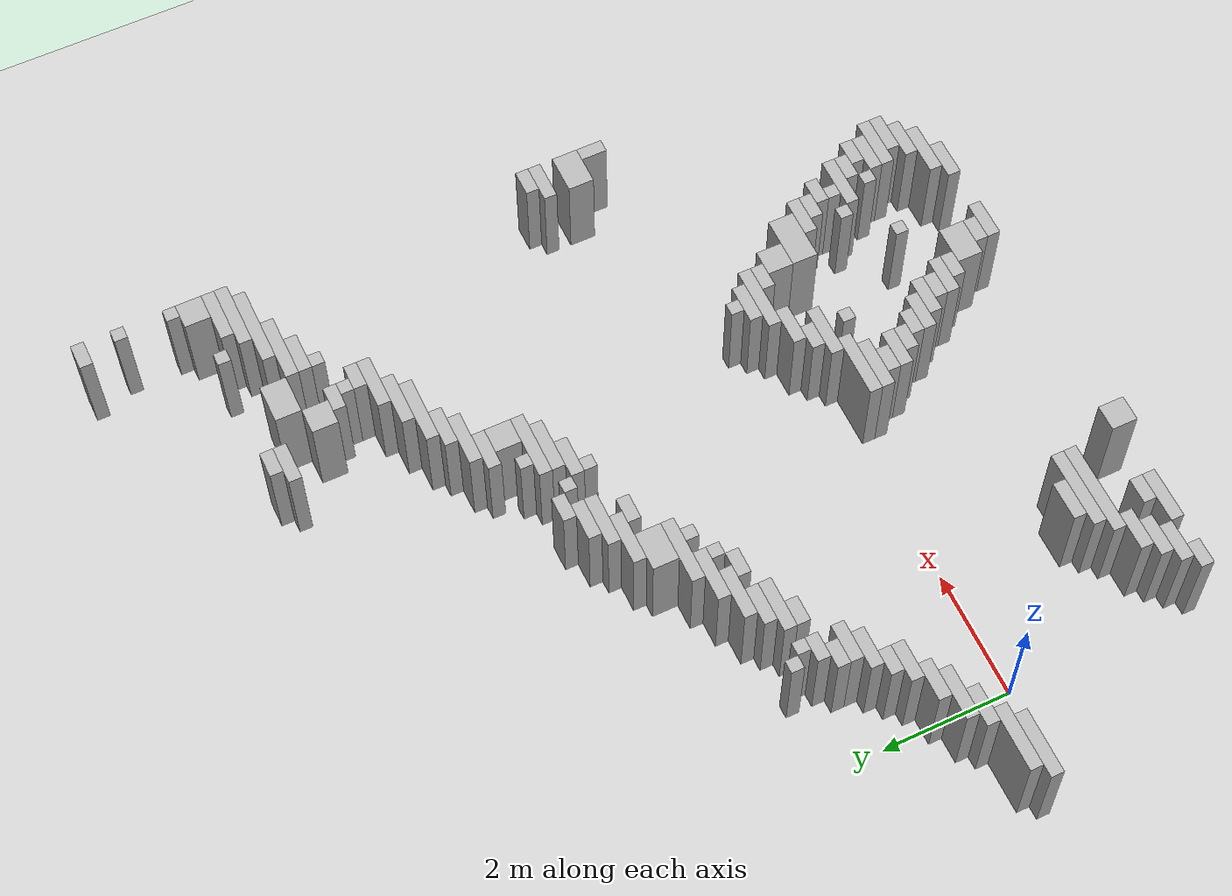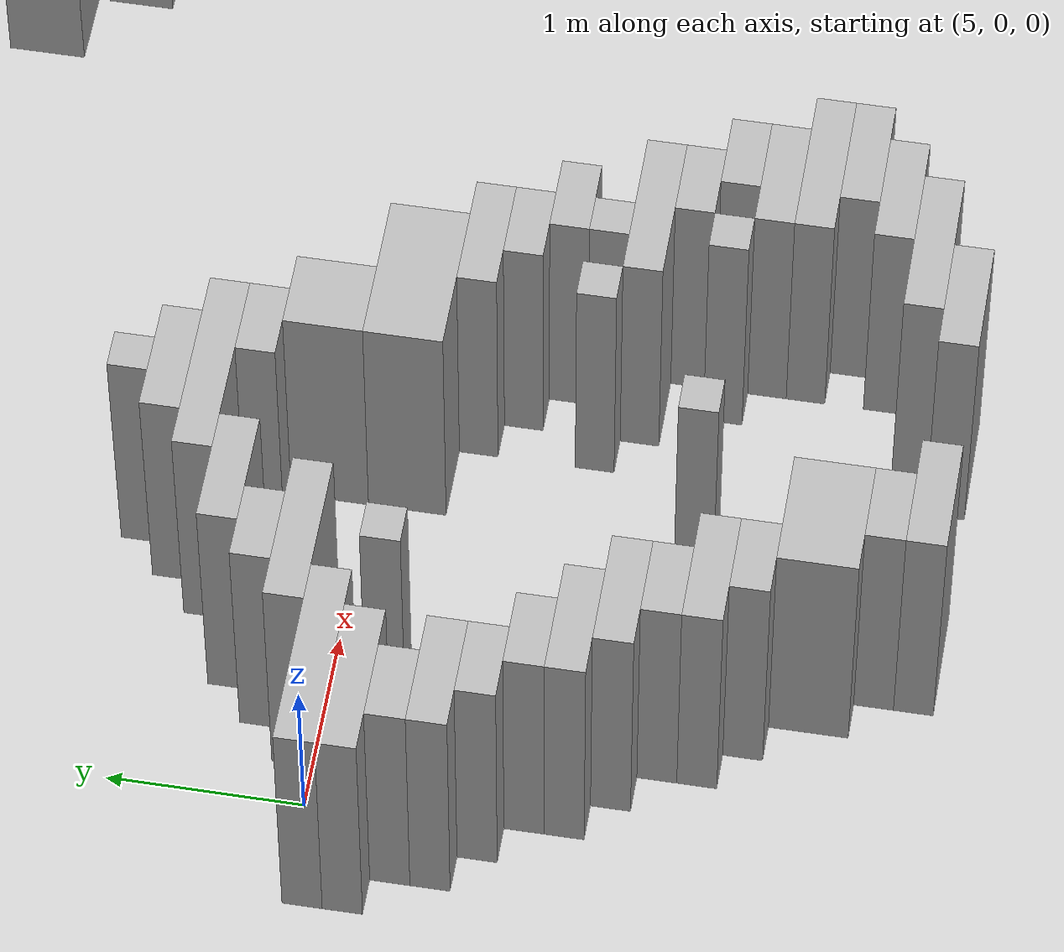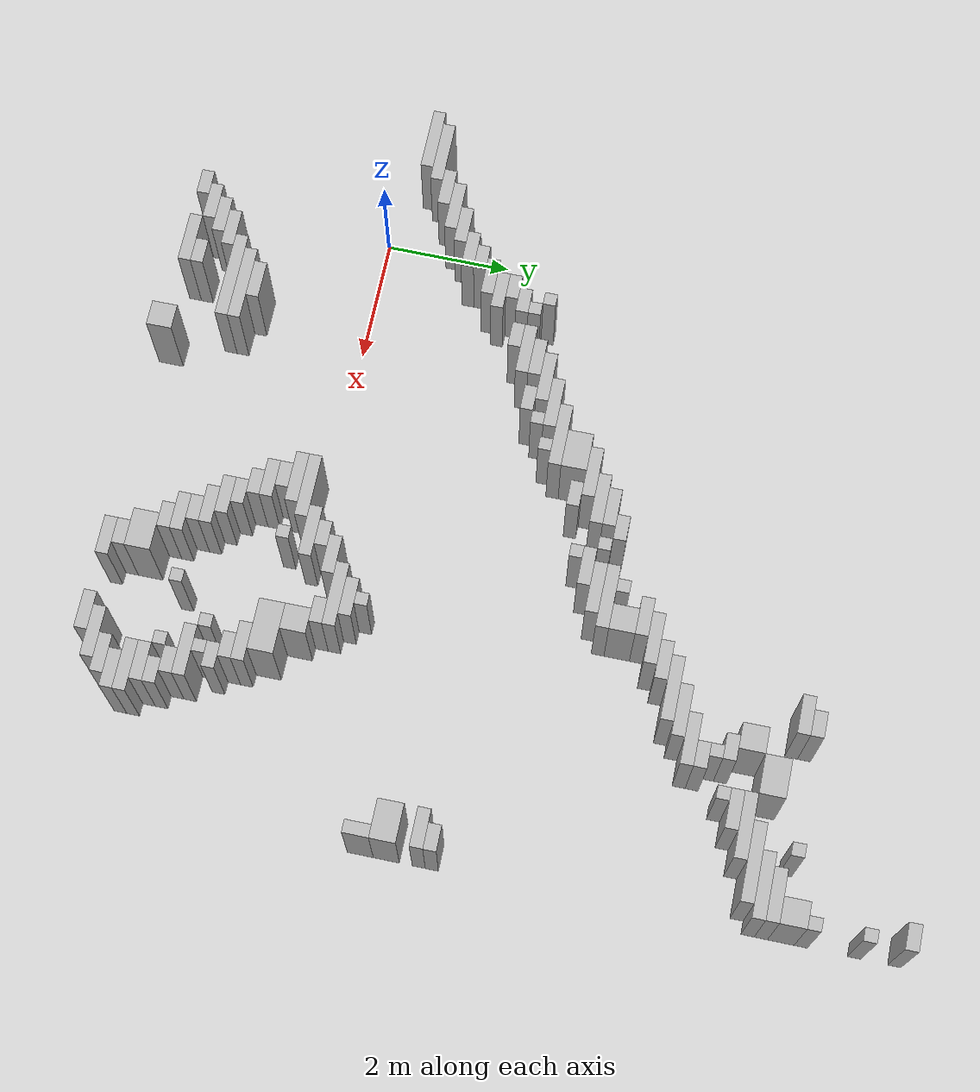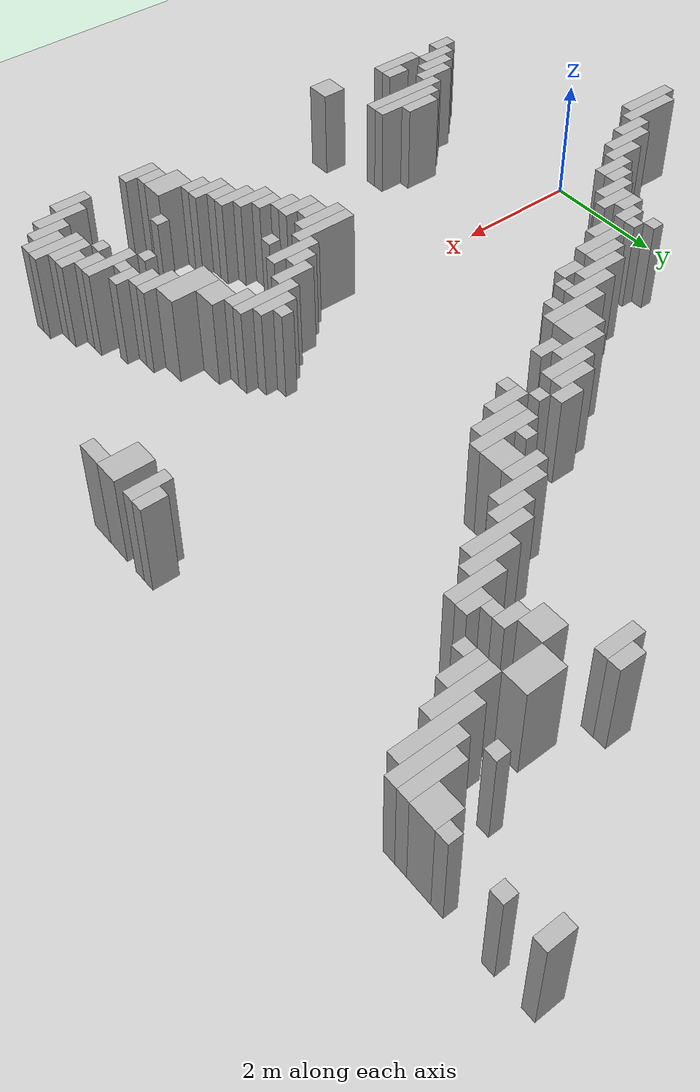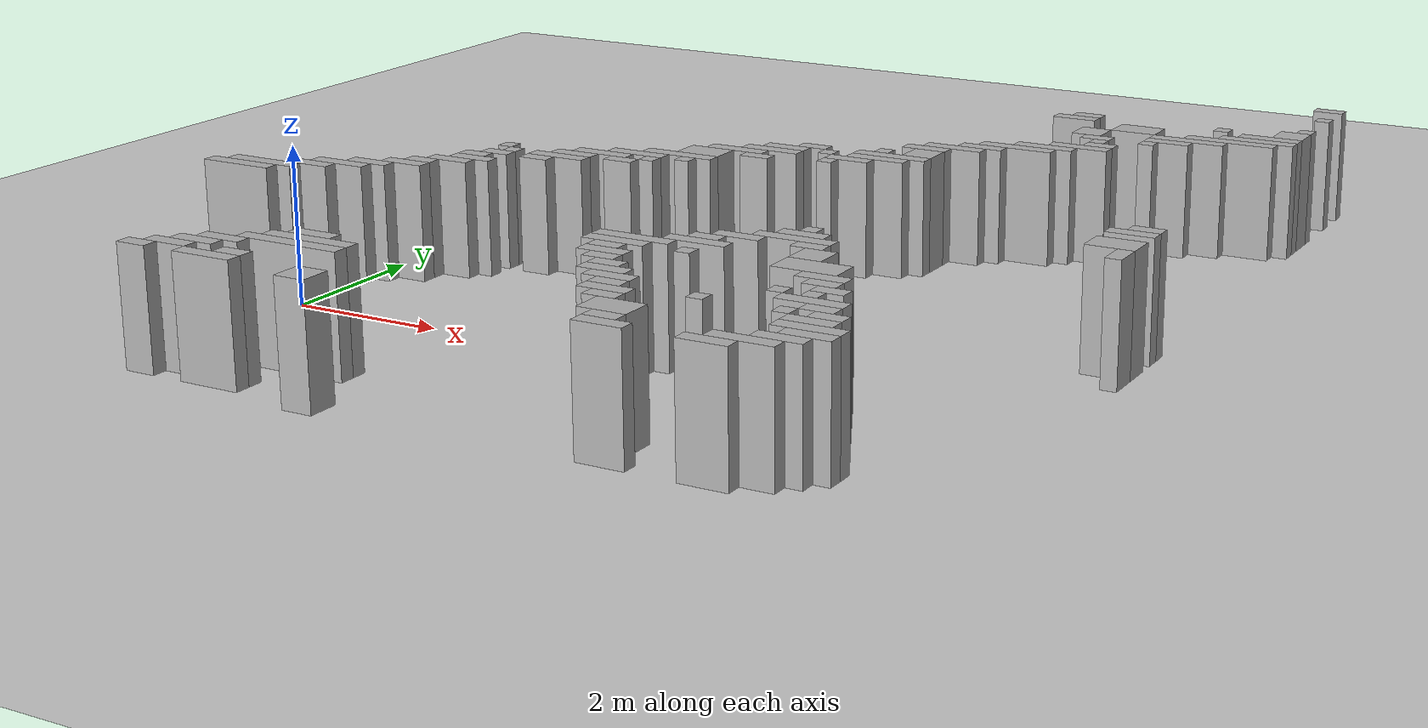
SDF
<sdf version="1.6">
 <world name="real_map">
  <include><uri>model://sun</uri></include>
  <include><uri>model://ground_plane</uri></include>
  <model name="w0">
   <static>true</static>
   <pose>9.90 9.30 0.8 0 0 0</pose>
   <link name="l">
    <collision name="c"><geometry><box><size>0.20 0.20 1.5</size></box></geometry></collision>
    <visual name="v">
     <geometry><box><size>0.20 0.20 1.5</size></box></geometry>
     <material><ambient>0.7 0.7 0.7 1</ambient></material>
    </visual>
   </link>
  </model>
  <model name="w1">
   <static>true</static>
   <pose>9.80 9.90 0.8 0 0 0</pose>
   <link name="l">
    <collision name="c"><geometry><box><size>0.40 0.20 1.5</size></box></geometry></collision>
    <visual name="v">
     <geometry><box><size>0.40 0.20 1.5</size></box></geometry>
     <material><ambient>0.7 0.7 0.7 1</ambient></material>
    </visual>
   </link>
  </model>
  <model name="w4">
   <static>true</static>
   <pose>9.80 8.20 0.8 0 0 0</pose>
   <link name="l">
    <collision name="c"><geometry><box><size>0.40 0.40 1.5</size></box></geometry></collision>
    <visual name="v">
     <geometry><box><size>0.40 0.40 1.5</size></box></geometry>
     <material><ambient>0.7 0.7 0.7 1</ambient></material>
    </visual>
   </link>
  </model>
  <model name="w6">
   <static>true</static>
   <pose>9.70 2.70 0.8 0 0 0</pose>
   <link name="l">
    <collision name="c"><geometry><box><size>0.60 0.20 1.5</size></box></geometry></collision>
    <visual name="v">
     <geometry><box><size>0.60 0.20 1.5</size></box></geometry>
     <material><ambient>0.7 0.7 0.7 1</ambient></material>
    </visual>
   </link>
  </model>
  <model name="w8">
   <static>true</static>
   <pose>9.90 8.50 0.8 0 0 0</pose>
   <link name="l">
    <collision name="c"><geometry><box><size>0.20 0.20 1.5</size></box></geometry></collision>
    <visual name="v">
     <geometry><box><size>0.20 0.20 1.5</size></box></geometry>
     <material><ambient>0.7 0.7 0.7 1</ambient></material>
    </visual>
   </link>
  </model>
  <model name="w9">
   <static>true</static>
   <pose>6.50 5.70 0.8 0 0 0</pose>
   <link name="l">
    <collision name="c"><geometry><box><size>0.60 0.20 1.5</size></box></geometry></collision>
    <visual name="v">
     <geometry><box><size>0.60 0.20 1.5</size></box></geometry>
     <material><ambient>0.7 0.7 0.7 1</ambient></material>
    </visual>
   </link>
  </model>
  <model name="w10">
   <static>true</static>
   <pose>5.90 5.30 0.8 0 0 0</pose>
   <link name="l">
    <collision name="c"><geometry><box><size>0.60 0.20 1.5</size></box></geometry></collision>
    <visual name="v">
     <geometry><box><size>0.60 0.20 1.5</size></box></geometry>
     <material><ambient>0.7 0.7 0.7 1</ambient></material>
    </visual>
   </link>
  </model>
  <model name="w11">
   <static>true</static>
   <pose>7.00 8.10 0.8 0 0 0</pose>
   <link name="l">
    <collision name="c"><geometry><box><size>0.40 0.20 1.5</size></box></geometry></collision>
    <visual name="v">
     <geometry><box><size>0.40 0.20 1.5</size></box></geometry>
     <material><ambient>0.7 0.7 0.7 1</ambient></material>
    </visual>
   </link>
  </model>
  <model name="w12">
   <static>true</static>
   <pose>5.60 4.50 0.8 0 0 0</pose>
   <link name="l">
    <collision name="c"><geometry><box><size>0.80 0.20 1.5</size></box></geometry></collision>
    <visual name="v">
     <geometry><box><size>0.80 0.20 1.5</size></box></geometry>
     <material><ambient>0.7 0.7 0.7 1</ambient></material>
    </visual>
   </link>
  </model>
  <model name="w13">
   <static>true</static>
   <pose>7.20 6.10 0.8 0 0 0</pose>
   <link name="l">
    <collision name="c"><geometry><box><size>0.80 0.20 1.5</size></box></geometry></collision>
    <visual name="v">
     <geometry><box><size>0.80 0.20 1.5</size></box></geometry>
     <material><ambient>0.7 0.7 0.7 1</ambient></material>
    </visual>
   </link>
  </model>
  <model name="w15">
   <static>true</static>
   <pose>7.60 6.90 0.8 0 0 0</pose>
   <link name="l">
    <collision name="c"><geometry><box><size>0.40 0.20 1.5</size></box></geometry></collision>
    <visual name="v">
     <geometry><box><size>0.40 0.20 1.5</size></box></geometry>
     <material><ambient>0.7 0.7 0.7 1</ambient></material>
    </visual>
   </link>
  </model>
  <model name="w18">
   <static>true</static>
   <pose>7.80 6.50 0.8 0 0 0</pose>
   <link name="l">
    <collision name="c"><geometry><box><size>0.40 0.20 1.5</size></box></geometry></collision>
    <visual name="v">
     <geometry><box><size>0.40 0.20 1.5</size></box></geometry>
     <material><ambient>0.7 0.7 0.7 1</ambient></material>
    </visual>
   </link>
  </model>
  <model name="w19">
   <static>true</static>
   <pose>7.70 6.70 0.8 0 0 0</pose>
   <link name="l">
    <collision name="c"><geometry><box><size>0.20 0.20 1.5</size></box></geometry></collision>
    <visual name="v">
     <geometry><box><size>0.20 0.20 1.5</size></box></geometry>
     <material><ambient>0.7 0.7 0.7 1</ambient></material>
    </visual>
   </link>
  </model>
  <model name="w21">
   <static>true</static>
   <pose>5.30 4.30 0.8 0 0 0</pose>
   <link name="l">
    <collision name="c"><geometry><box><size>0.60 0.20 1.5</size></box></geometry></collision>
    <visual name="v">
     <geometry><box><size>0.60 0.20 1.5</size></box></geometry>
     <material><ambient>0.7 0.7 0.7 1</ambient></material>
    </visual>
   </link>
  </model>
  <model name="w22">
   <static>true</static>
   <pose>5.60 0.30 0.8 0 0 0</pose>
   <link name="l">
    <collision name="c"><geometry><box><size>0.40 0.20 1.5</size></box></geometry></collision>
    <visual name="v">
     <geometry><box><size>0.40 0.20 1.5</size></box></geometry>
     <material><ambient>0.7 0.7 0.7 1</ambient></material>
    </visual>
   </link>
  </model>
  <model name="w23">
   <static>true</static>
   <pose>7.70 -1.10 0.8 0 0 0</pose>
   <link name="l">
    <collision name="c"><geometry><box><size>0.20 0.20 1.5</size></box></geometry></collision>
    <visual name="v">
     <geometry><box><size>0.20 0.20 1.5</size></box></geometry>
     <material><ambient>0.7 0.7 0.7 1</ambient></material>
    </visual>
   </link>
  </model>
  <model name="w24">
   <static>true</static>
   <pose>0.90 1.90 0.8 0 0 0</pose>
   <link name="l">
    <collision name="c"><geometry><box><size>0.60 0.20 1.5</size></box></geometry></collision>
    <visual name="v">
     <geometry><box><size>0.60 0.20 1.5</size></box></geometry>
     <material><ambient>0.7 0.7 0.7 1</ambient></material>
    </visual>
   </link>
  </model>
  <model name="w25">
   <static>true</static>
   <pose>8.10 -1.90 0.8 0 0 0</pose>
   <link name="l">
    <collision name="c"><geometry><box><size>0.60 0.20 1.5</size></box></geometry></collision>
    <visual name="v">
     <geometry><box><size>0.60 0.20 1.5</size></box></geometry>
     <material><ambient>0.7 0.7 0.7 1</ambient></material>
    </visual>
   </link>
  </model>
  <model name="w26">
   <static>true</static>
   <pose>0.50 1.50 0.8 0 0 0</pose>
   <link name="l">
    <collision name="c"><geometry><box><size>0.60 0.20 1.5</size></box></geometry></collision>
    <visual name="v">
     <geometry><box><size>0.60 0.20 1.5</size></box></geometry>
     <material><ambient>0.7 0.7 0.7 1</ambient></material>
    </visual>
   </link>
  </model>
  <model name="w27">
   <static>true</static>
   <pose>7.80 -1.30 0.8 0 0 0</pose>
   <link name="l">
    <collision name="c"><geometry><box><size>0.80 0.20 1.5</size></box></geometry></collision>
    <visual name="v">
     <geometry><box><size>0.80 0.20 1.5</size></box></geometry>
     <material><ambient>0.7 0.7 0.7 1</ambient></material>
    </visual>
   </link>
  </model>
  <model name="w28">
   <static>true</static>
   <pose>7.50 -0.50 0.8 0 0 0</pose>
   <link name="l">
    <collision name="c"><geometry><box><size>0.60 0.20 1.5</size></box></geometry></collision>
    <visual name="v">
     <geometry><box><size>0.60 0.20 1.5</size></box></geometry>
     <material><ambient>0.7 0.7 0.7 1</ambient></material>
    </visual>
   </link>
  </model>
  <model name="w29">
   <static>true</static>
   <pose>7.40 7.20 0.8 0 0 0</pose>
   <link name="l">
    <collision name="c"><geometry><box><size>0.40 0.40 1.5</size></box></geometry></collision>
    <visual name="v">
     <geometry><box><size>0.40 0.40 1.5</size></box></geometry>
     <material><ambient>0.7 0.7 0.7 1</ambient></material>
    </visual>
   </link>
  </model>
  <model name="w30">
   <static>true</static>
   <pose>1.80 2.50 0.8 0 0 0</pose>
   <link name="l">
    <collision name="c"><geometry><box><size>0.40 0.20 1.5</size></box></geometry></collision>
    <visual name="v">
     <geometry><box><size>0.40 0.20 1.5</size></box></geometry>
     <material><ambient>0.7 0.7 0.7 1</ambient></material>
    </visual>
   </link>
  </model>
  <model name="w31">
   <static>true</static>
   <pose>6.50 1.10 0.8 0 0 0</pose>
   <link name="l">
    <collision name="c"><geometry><box><size>0.20 0.20 1.5</size></box></geometry></collision>
    <visual name="v">
     <geometry><box><size>0.20 0.20 1.5</size></box></geometry>
     <material><ambient>0.7 0.7 0.7 1</ambient></material>
    </visual>
   </link>
  </model>
  <model name="w32">
   <static>true</static>
   <pose>7.30 -1.10 0.8 0 0 0</pose>
   <link name="l">
    <collision name="c"><geometry><box><size>0.20 0.20 1.5</size></box></geometry></collision>
    <visual name="v">
     <geometry><box><size>0.20 0.20 1.5</size></box></geometry>
     <material><ambient>0.7 0.7 0.7 1</ambient></material>
    </visual>
   </link>
  </model>
  <model name="w33">
   <static>true</static>
   <pose>7.70 -1.70 0.8 0 0 0</pose>
   <link name="l">
    <collision name="c"><geometry><box><size>0.20 0.20 1.5</size></box></geometry></collision>
    <visual name="v">
     <geometry><box><size>0.20 0.20 1.5</size></box></geometry>
     <material><ambient>0.7 0.7 0.7 1</ambient></material>
    </visual>
   </link>
  </model>
  <model name="w34">
   <static>true</static>
   <pose>0.20 -2.90 0.8 0 0 0</pose>
   <link name="l">
    <collision name="c"><geometry><box><size>0.40 0.20 1.5</size></box></geometry></collision>
    <visual name="v">
     <geometry><box><size>0.40 0.20 1.5</size></box></geometry>
     <material><ambient>0.7 0.7 0.7 1</ambient></material>
    </visual>
   </link>
  </model>
  <model name="w36">
   <static>true</static>
   <pose>7.00 0.20 0.8 0 0 0</pose>
   <link name="l">
    <collision name="c"><geometry><box><size>0.40 0.40 1.5</size></box></geometry></collision>
    <visual name="v">
     <geometry><box><size>0.40 0.40 1.5</size></box></geometry>
     <material><ambient>0.7 0.7 0.7 1</ambient></material>
    </visual>
   </link>
  </model>
  <model name="w37">
   <static>true</static>
   <pose>6.90 7.90 0.8 0 0 0</pose>
   <link name="l">
    <collision name="c"><geometry><box><size>0.60 0.20 1.5</size></box></geometry></collision>
    <visual name="v">
     <geometry><box><size>0.60 0.20 1.5</size></box></geometry>
     <material><ambient>0.7 0.7 0.7 1</ambient></material>
    </visual>
   </link>
  </model>
  <model name="w38">
   <static>true</static>
   <pose>7.90 7.60 0.8 0 0 0</pose>
   <link name="l">
    <collision name="c"><geometry><box><size>0.60 0.40 1.5</size></box></geometry></collision>
    <visual name="v">
     <geometry><box><size>0.60 0.40 1.5</size></box></geometry>
     <material><ambient>0.7 0.7 0.7 1</ambient></material>
    </visual>
   </link>
  </model>
  <model name="w42">
   <static>true</static>
   <pose>8.00 -1.50 0.8 0 0 0</pose>
   <link name="l">
    <collision name="c"><geometry><box><size>0.40 0.20 1.5</size></box></geometry></collision>
    <visual name="v">
     <geometry><box><size>0.40 0.20 1.5</size></box></geometry>
     <material><ambient>0.7 0.7 0.7 1</ambient></material>
    </visual>
   </link>
  </model>
  <model name="w43">
   <static>true</static>
   <pose>8.10 -2.50 0.8 0 0 0</pose>
   <link name="l">
    <collision name="c"><geometry><box><size>0.60 0.20 1.5</size></box></geometry></collision>
    <visual name="v">
     <geometry><box><size>0.60 0.20 1.5</size></box></geometry>
     <material><ambient>0.7 0.7 0.7 1</ambient></material>
    </visual>
   </link>
  </model>
  <model name="w46">
   <static>true</static>
   <pose>8.20 -2.10 0.8 0 0 0</pose>
   <link name="l">
    <collision name="c"><geometry><box><size>0.80 0.20 1.5</size></box></geometry></collision>
    <visual name="v">
     <geometry><box><size>0.80 0.20 1.5</size></box></geometry>
     <material><ambient>0.7 0.7 0.7 1</ambient></material>
    </visual>
   </link>
  </model>
  <model name="w47">
   <static>true</static>
   <pose>1.00 2.30 0.8 0 0 0</pose>
   <link name="l">
    <collision name="c"><geometry><box><size>0.40 0.20 1.5</size></box></geometry></collision>
    <visual name="v">
     <geometry><box><size>0.40 0.20 1.5</size></box></geometry>
     <material><ambient>0.7 0.7 0.7 1</ambient></material>
    </visual>
   </link>
  </model>
  <model name="w48">
   <static>true</static>
   <pose>3.50 3.30 0.8 0 0 0</pose>
   <link name="l">
    <collision name="c"><geometry><box><size>0.20 0.20 1.5</size></box></geometry></collision>
    <visual name="v">
     <geometry><box><size>0.20 0.20 1.5</size></box></geometry>
     <material><ambient>0.7 0.7 0.7 1</ambient></material>
    </visual>
   </link>
  </model>
  <model name="w49">
   <static>true</static>
   <pose>7.60 6.30 0.8 0 0 0</pose>
   <link name="l">
    <collision name="c"><geometry><box><size>0.80 0.20 1.5</size></box></geometry></collision>
    <visual name="v">
     <geometry><box><size>0.80 0.20 1.5</size></box></geometry>
     <material><ambient>0.7 0.7 0.7 1</ambient></material>
    </visual>
   </link>
  </model>
  <model name="w51">
   <static>true</static>
   <pose>1.10 2.90 0.8 0 0 0</pose>
   <link name="l">
    <collision name="c"><geometry><box><size>0.20 0.20 1.5</size></box></geometry></collision>
    <visual name="v">
     <geometry><box><size>0.20 0.20 1.5</size></box></geometry>
     <material><ambient>0.7 0.7 0.7 1</ambient></material>
    </visual>
   </link>
  </model>
  <model name="w52">
   <static>true</static>
   <pose>3.50 3.80 0.8 0 0 0</pose>
   <link name="l">
    <collision name="c"><geometry><box><size>0.60 0.40 1.5</size></box></geometry></collision>
    <visual name="v">
     <geometry><box><size>0.60 0.40 1.5</size></box></geometry>
     <material><ambient>0.7 0.7 0.7 1</ambient></material>
    </visual>
   </link>
  </model>
  <model name="w53">
   <static>true</static>
   <pose>7.60 -0.70 0.8 0 0 0</pose>
   <link name="l">
    <collision name="c"><geometry><box><size>0.40 0.20 1.5</size></box></geometry></collision>
    <visual name="v">
     <geometry><box><size>0.40 0.20 1.5</size></box></geometry>
     <material><ambient>0.7 0.7 0.7 1</ambient></material>
    </visual>
   </link>
  </model>
  <model name="w54">
   <static>true</static>
   <pose>8.50 7.10 0.8 0 0 0</pose>
   <link name="l">
    <collision name="c"><geometry><box><size>0.60 0.20 1.5</size></box></geometry></collision>
    <visual name="v">
     <geometry><box><size>0.60 0.20 1.5</size></box></geometry>
     <material><ambient>0.7 0.7 0.7 1</ambient></material>
    </visual>
   </link>
  </model>
  <model name="w55">
   <static>true</static>
   <pose>1.20 2.50 0.8 0 0 0</pose>
   <link name="l">
    <collision name="c"><geometry><box><size>0.40 0.20 1.5</size></box></geometry></collision>
    <visual name="v">
     <geometry><box><size>0.40 0.20 1.5</size></box></geometry>
     <material><ambient>0.7 0.7 0.7 1</ambient></material>
    </visual>
   </link>
  </model>
  <model name="w58">
   <static>true</static>
   <pose>1.40 -2.70 0.8 0 0 0</pose>
   <link name="l">
    <collision name="c"><geometry><box><size>0.40 0.20 1.5</size></box></geometry></collision>
    <visual name="v">
     <geometry><box><size>0.40 0.20 1.5</size></box></geometry>
     <material><ambient>0.7 0.7 0.7 1</ambient></material>
    </visual>
   </link>
  </model>
  <model name="w68">
   <static>true</static>
   <pose>9.80 2.90 0.8 0 0 0</pose>
   <link name="l">
    <collision name="c"><geometry><box><size>0.40 0.20 1.5</size></box></geometry></collision>
    <visual name="v">
     <geometry><box><size>0.40 0.20 1.5</size></box></geometry>
     <material><ambient>0.7 0.7 0.7 1</ambient></material>
    </visual>
   </link>
  </model>
  <model name="w70">
   <static>true</static>
   <pose>4.20 3.90 0.8 0 0 0</pose>
   <link name="l">
    <collision name="c"><geometry><box><size>0.40 0.20 1.5</size></box></geometry></collision>
    <visual name="v">
     <geometry><box><size>0.40 0.20 1.5</size></box></geometry>
     <material><ambient>0.7 0.7 0.7 1</ambient></material>
    </visual>
   </link>
  </model>
  <model name="w71">
   <static>true</static>
   <pose>9.70 2.20 0.8 0 0 0</pose>
   <link name="l">
    <collision name="c"><geometry><box><size>0.60 0.40 1.5</size></box></geometry></collision>
    <visual name="v">
     <geometry><box><size>0.60 0.40 1.5</size></box></geometry>
     <material><ambient>0.7 0.7 0.7 1</ambient></material>
    </visual>
   </link>
  </model>
  <model name="w73">
   <static>true</static>
   <pose>9.90 1.80 0.8 0 0 0</pose>
   <link name="l">
    <collision name="c"><geometry><box><size>0.20 0.40 1.5</size></box></geometry></collision>
    <visual name="v">
     <geometry><box><size>0.20 0.40 1.5</size></box></geometry>
     <material><ambient>0.7 0.7 0.7 1</ambient></material>
    </visual>
   </link>
  </model>
  <model name="w75">
   <static>true</static>
   <pose>2.60 -3.00 0.8 0 0 0</pose>
   <link name="l">
    <collision name="c"><geometry><box><size>0.40 0.40 1.5</size></box></geometry></collision>
    <visual name="v">
     <geometry><box><size>0.40 0.40 1.5</size></box></geometry>
     <material><ambient>0.7 0.7 0.7 1</ambient></material>
    </visual>
   </link>
  </model>
  <model name="w76">
   <static>true</static>
   <pose>5.00 -0.90 0.8 0 0 0</pose>
   <link name="l">
    <collision name="c"><geometry><box><size>0.40 0.20 1.5</size></box></geometry></collision>
    <visual name="v">
     <geometry><box><size>0.40 0.20 1.5</size></box></geometry>
     <material><ambient>0.7 0.7 0.7 1</ambient></material>
    </visual>
   </link>
  </model>
  <model name="w79">
   <static>true</static>
   <pose>2.80 2.90 0.8 0 0 0</pose>
   <link name="l">
    <collision name="c"><geometry><box><size>0.40 0.20 1.5</size></box></geometry></collision>
    <visual name="v">
     <geometry><box><size>0.40 0.20 1.5</size></box></geometry>
     <material><ambient>0.7 0.7 0.7 1</ambient></material>
    </visual>
   </link>
  </model>
  <model name="w81">
   <static>true</static>
   <pose>5.20 -1.10 0.8 0 0 0</pose>
   <link name="l">
    <collision name="c"><geometry><box><size>0.40 0.20 1.5</size></box></geometry></collision>
    <visual name="v">
     <geometry><box><size>0.40 0.20 1.5</size></box></geometry>
     <material><ambient>0.7 0.7 0.7 1</ambient></material>
    </visual>
   </link>
  </model>
  <model name="w87">
   <static>true</static>
   <pose>5.30 -1.30 0.8 0 0 0</pose>
   <link name="l">
    <collision name="c"><geometry><box><size>0.60 0.20 1.5</size></box></geometry></collision>
    <visual name="v">
     <geometry><box><size>0.60 0.20 1.5</size></box></geometry>
     <material><ambient>0.7 0.7 0.7 1</ambient></material>
    </visual>
   </link>
  </model>
  <model name="w89">
   <static>true</static>
   <pose>5.10 4.10 0.8 0 0 0</pose>
   <link name="l">
    <collision name="c"><geometry><box><size>0.20 0.20 1.5</size></box></geometry></collision>
    <visual name="v">
     <geometry><box><size>0.20 0.20 1.5</size></box></geometry>
     <material><ambient>0.7 0.7 0.7 1</ambient></material>
    </visual>
   </link>
  </model>
  <model name="w90">
   <static>true</static>
   <pose>5.60 -1.70 0.8 0 0 0</pose>
   <link name="l">
    <collision name="c"><geometry><box><size>0.40 0.20 1.5</size></box></geometry></collision>
    <visual name="v">
     <geometry><box><size>0.40 0.20 1.5</size></box></geometry>
     <material><ambient>0.7 0.7 0.7 1</ambient></material>
    </visual>
   </link>
  </model>
  <model name="w94">
   <static>true</static>
   <pose>5.70 -0.30 0.8 0 0 0</pose>
   <link name="l">
    <collision name="c"><geometry><box><size>0.20 0.20 1.5</size></box></geometry></collision>
    <visual name="v">
     <geometry><box><size>0.20 0.20 1.5</size></box></geometry>
     <material><ambient>0.7 0.7 0.7 1</ambient></material>
    </visual>
   </link>
  </model>
  <model name="w97">
   <static>true</static>
   <pose>5.80 -2.10 0.8 0 0 0</pose>
   <link name="l">
    <collision name="c"><geometry><box><size>0.40 0.20 1.5</size></box></geometry></collision>
    <visual name="v">
     <geometry><box><size>0.40 0.20 1.5</size></box></geometry>
     <material><ambient>0.7 0.7 0.7 1</ambient></material>
    </visual>
   </link>
  </model>
  <model name="w99">
   <static>true</static>
   <pose>6.10 -2.40 0.8 0 0 0</pose>
   <link name="l">
    <collision name="c"><geometry><box><size>0.60 0.40 1.5</size></box></geometry></collision>
    <visual name="v">
     <geometry><box><size>0.60 0.40 1.5</size></box></geometry>
     <material><ambient>0.7 0.7 0.7 1</ambient></material>
    </visual>
   </link>
  </model>
  <model name="w102">
   <static>true</static>
   <pose>6.20 -2.70 0.8 0 0 0</pose>
   <link name="l">
    <collision name="c"><geometry><box><size>0.40 0.20 1.5</size></box></geometry></collision>
    <visual name="v">
     <geometry><box><size>0.40 0.20 1.5</size></box></geometry>
     <material><ambient>0.7 0.7 0.7 1</ambient></material>
    </visual>
   </link>
  </model>
  <model name="w112">
   <static>true</static>
   <pose>6.70 -1.70 0.8 0 0 0</pose>
   <link name="l">
    <collision name="c"><geometry><box><size>0.20 0.20 1.5</size></box></geometry></collision>
    <visual name="v">
     <geometry><box><size>0.20 0.20 1.5</size></box></geometry>
     <material><ambient>0.7 0.7 0.7 1</ambient></material>
    </visual>
   </link>
  </model>
  <model name="w116">
   <static>true</static>
   <pose>8.90 8.10 0.8 0 0 0</pose>
   <link name="l">
    <collision name="c"><geometry><box><size>0.20 0.20 1.5</size></box></geometry></collision>
    <visual name="v">
     <geometry><box><size>0.20 0.20 1.5</size></box></geometry>
     <material><ambient>0.7 0.7 0.7 1</ambient></material>
    </visual>
   </link>
  </model>
  <model name="w118">
   <static>true</static>
   <pose>9.60 7.90 0.8 0 0 0</pose>
   <link name="l">
    <collision name="c"><geometry><box><size>0.80 0.20 1.5</size></box></geometry></collision>
    <visual name="v">
     <geometry><box><size>0.80 0.20 1.5</size></box></geometry>
     <material><ambient>0.7 0.7 0.7 1</ambient></material>
    </visual>
   </link>
  </model>
  <model name="w120">
   <static>true</static>
   <pose>9.50 7.70 0.8 0 0 0</pose>
   <link name="l">
    <collision name="c"><geometry><box><size>1.00 0.20 1.5</size></box></geometry></collision>
    <visual name="v">
     <geometry><box><size>1.00 0.20 1.5</size></box></geometry>
     <material><ambient>0.7 0.7 0.7 1</ambient></material>
    </visual>
   </link>
  </model>
  <model name="w121">
   <static>true</static>
   <pose>9.20 7.50 0.8 0 0 0</pose>
   <link name="l">
    <collision name="c"><geometry><box><size>1.20 0.20 1.5</size></box></geometry></collision>
    <visual name="v">
     <geometry><box><size>1.20 0.20 1.5</size></box></geometry>
     <material><ambient>0.7 0.7 0.7 1</ambient></material>
    </visual>
   </link>
  </model>
  <model name="w123">
   <static>true</static>
   <pose>8.70 7.30 0.8 0 0 0</pose>
   <link name="l">
    <collision name="c"><geometry><box><size>1.00 0.20 1.5</size></box></geometry></collision>
    <visual name="v">
     <geometry><box><size>1.00 0.20 1.5</size></box></geometry>
     <material><ambient>0.7 0.7 0.7 1</ambient></material>
    </visual>
   </link>
  </model>
  <model name="w126">
   <static>true</static>
   <pose>8.30 6.90 0.8 0 0 0</pose>
   <link name="l">
    <collision name="c"><geometry><box><size>0.20 0.20 1.5</size></box></geometry></collision>
    <visual name="v">
     <geometry><box><size>0.20 0.20 1.5</size></box></geometry>
     <material><ambient>0.7 0.7 0.7 1</ambient></material>
    </visual>
   </link>
  </model>
  <model name="w128">
   <static>true</static>
   <pose>7.80 -0.90 0.8 0 0 0</pose>
   <link name="l">
    <collision name="c"><geometry><box><size>0.40 0.20 1.5</size></box></geometry></collision>
    <visual name="v">
     <geometry><box><size>0.40 0.20 1.5</size></box></geometry>
     <material><ambient>0.7 0.7 0.7 1</ambient></material>
    </visual>
   </link>
  </model>
  <model name="w131">
   <static>true</static>
   <pose>7.20 -0.20 0.8 0 0 0</pose>
   <link name="l">
    <collision name="c"><geometry><box><size>0.80 0.40 1.5</size></box></geometry></collision>
    <visual name="v">
     <geometry><box><size>0.80 0.40 1.5</size></box></geometry>
     <material><ambient>0.7 0.7 0.7 1</ambient></material>
    </visual>
   </link>
  </model>
  <model name="w133">
   <static>true</static>
   <pose>6.90 5.90 0.8 0 0 0</pose>
   <link name="l">
    <collision name="c"><geometry><box><size>1.00 0.20 1.5</size></box></geometry></collision>
    <visual name="v">
     <geometry><box><size>1.00 0.20 1.5</size></box></geometry>
     <material><ambient>0.7 0.7 0.7 1</ambient></material>
    </visual>
   </link>
  </model>
  <model name="w135">
   <static>true</static>
   <pose>6.50 0.90 0.8 0 0 0</pose>
   <link name="l">
    <collision name="c"><geometry><box><size>0.60 0.20 1.5</size></box></geometry></collision>
    <visual name="v">
     <geometry><box><size>0.60 0.20 1.5</size></box></geometry>
     <material><ambient>0.7 0.7 0.7 1</ambient></material>
    </visual>
   </link>
  </model>
  <model name="w137">
   <static>true</static>
   <pose>6.20 5.50 0.8 0 0 0</pose>
   <link name="l">
    <collision name="c"><geometry><box><size>0.80 0.20 1.5</size></box></geometry></collision>
    <visual name="v">
     <geometry><box><size>0.80 0.20 1.5</size></box></geometry>
     <material><ambient>0.7 0.7 0.7 1</ambient></material>
    </visual>
   </link>
  </model>
  <model name="w139">
   <static>true</static>
   <pose>5.90 0.50 0.8 0 0 0</pose>
   <link name="l">
    <collision name="c"><geometry><box><size>0.60 0.20 1.5</size></box></geometry></collision>
    <visual name="v">
     <geometry><box><size>0.60 0.20 1.5</size></box></geometry>
     <material><ambient>0.7 0.7 0.7 1</ambient></material>
    </visual>
   </link>
  </model>
  <model name="w141">
   <static>true</static>
   <pose>6.00 5.00 0.8 0 0 0</pose>
   <link name="l">
    <collision name="c"><geometry><box><size>0.40 0.40 1.5</size></box></geometry></collision>
    <visual name="v">
     <geometry><box><size>0.40 0.40 1.5</size></box></geometry>
     <material><ambient>0.7 0.7 0.7 1</ambient></material>
    </visual>
   </link>
  </model>
  <model name="w142">
   <static>true</static>
   <pose>5.50 4.90 0.8 0 0 0</pose>
   <link name="l">
    <collision name="c"><geometry><box><size>0.20 0.20 1.5</size></box></geometry></collision>
    <visual name="v">
     <geometry><box><size>0.20 0.20 1.5</size></box></geometry>
     <material><ambient>0.7 0.7 0.7 1</ambient></material>
    </visual>
   </link>
  </model>
  <model name="w144">
   <static>true</static>
   <pose>4.60 4.70 0.8 0 0 0</pose>
   <link name="l">
    <collision name="c"><geometry><box><size>0.40 0.20 1.5</size></box></geometry></collision>
    <visual name="v">
     <geometry><box><size>0.40 0.20 1.5</size></box></geometry>
     <material><ambient>0.7 0.7 0.7 1</ambient></material>
    </visual>
   </link>
  </model>
  <model name="w145">
   <static>true</static>
   <pose>5.70 4.70 0.8 0 0 0</pose>
   <link name="l">
    <collision name="c"><geometry><box><size>1.00 0.20 1.5</size></box></geometry></collision>
    <visual name="v">
     <geometry><box><size>1.00 0.20 1.5</size></box></geometry>
     <material><ambient>0.7 0.7 0.7 1</ambient></material>
    </visual>
   </link>
  </model>
  <model name="w146">
   <static>true</static>
   <pose>4.30 4.50 0.8 0 0 0</pose>
   <link name="l">
    <collision name="c"><geometry><box><size>0.60 0.20 1.5</size></box></geometry></collision>
    <visual name="v">
     <geometry><box><size>0.60 0.20 1.5</size></box></geometry>
     <material><ambient>0.7 0.7 0.7 1</ambient></material>
    </visual>
   </link>
  </model>
  <model name="w147">
   <static>true</static>
   <pose>4.90 4.50 0.8 0 0 0</pose>
   <link name="l">
    <collision name="c"><geometry><box><size>0.20 0.20 1.5</size></box></geometry></collision>
    <visual name="v">
     <geometry><box><size>0.20 0.20 1.5</size></box></geometry>
     <material><ambient>0.7 0.7 0.7 1</ambient></material>
    </visual>
   </link>
  </model>
  <model name="w148">
   <static>true</static>
   <pose>5.60 0.10 0.8 0 0 0</pose>
   <link name="l">
    <collision name="c"><geometry><box><size>0.80 0.20 1.5</size></box></geometry></collision>
    <visual name="v">
     <geometry><box><size>0.80 0.20 1.5</size></box></geometry>
     <material><ambient>0.7 0.7 0.7 1</ambient></material>
    </visual>
   </link>
  </model>
  <model name="w149">
   <static>true</static>
   <pose>4.20 4.30 0.8 0 0 0</pose>
   <link name="l">
    <collision name="c"><geometry><box><size>0.80 0.20 1.5</size></box></geometry></collision>
    <visual name="v">
     <geometry><box><size>0.80 0.20 1.5</size></box></geometry>
     <material><ambient>0.7 0.7 0.7 1</ambient></material>
    </visual>
   </link>
  </model>
  <model name="w152">
   <static>true</static>
   <pose>3.80 4.10 0.8 0 0 0</pose>
   <link name="l">
    <collision name="c"><geometry><box><size>0.80 0.20 1.5</size></box></geometry></collision>
    <visual name="v">
     <geometry><box><size>0.80 0.20 1.5</size></box></geometry>
     <material><ambient>0.7 0.7 0.7 1</ambient></material>
    </visual>
   </link>
  </model>
  <model name="w158">
   <static>true</static>
   <pose>3.30 3.50 0.8 0 0 0</pose>
   <link name="l">
    <collision name="c"><geometry><box><size>1.00 0.20 1.5</size></box></geometry></collision>
    <visual name="v">
     <geometry><box><size>1.00 0.20 1.5</size></box></geometry>
     <material><ambient>0.7 0.7 0.7 1</ambient></material>
    </visual>
   </link>
  </model>
  <model name="w160">
   <static>true</static>
   <pose>2.80 3.30 0.8 0 0 0</pose>
   <link name="l">
    <collision name="c"><geometry><box><size>0.80 0.20 1.5</size></box></geometry></collision>
    <visual name="v">
     <geometry><box><size>0.80 0.20 1.5</size></box></geometry>
     <material><ambient>0.7 0.7 0.7 1</ambient></material>
    </visual>
   </link>
  </model>
  <model name="w162">
   <static>true</static>
   <pose>2.40 3.10 0.8 0 0 0</pose>
   <link name="l">
    <collision name="c"><geometry><box><size>0.80 0.20 1.5</size></box></geometry></collision>
    <visual name="v">
     <geometry><box><size>0.80 0.20 1.5</size></box></geometry>
     <material><ambient>0.7 0.7 0.7 1</ambient></material>
    </visual>
   </link>
  </model>
  <model name="w163">
   <static>true</static>
   <pose>3.10 3.10 0.8 0 0 0</pose>
   <link name="l">
    <collision name="c"><geometry><box><size>0.20 0.20 1.5</size></box></geometry></collision>
    <visual name="v">
     <geometry><box><size>0.20 0.20 1.5</size></box></geometry>
     <material><ambient>0.7 0.7 0.7 1</ambient></material>
    </visual>
   </link>
  </model>
  <model name="w166">
   <static>true</static>
   <pose>2.10 2.90 0.8 0 0 0</pose>
   <link name="l">
    <collision name="c"><geometry><box><size>0.60 0.20 1.5</size></box></geometry></collision>
    <visual name="v">
     <geometry><box><size>0.60 0.20 1.5</size></box></geometry>
     <material><ambient>0.7 0.7 0.7 1</ambient></material>
    </visual>
   </link>
  </model>
  <model name="w168">
   <static>true</static>
   <pose>1.30 2.70 0.8 0 0 0</pose>
   <link name="l">
    <collision name="c"><geometry><box><size>0.20 0.20 1.5</size></box></geometry></collision>
    <visual name="v">
     <geometry><box><size>0.20 0.20 1.5</size></box></geometry>
     <material><ambient>0.7 0.7 0.7 1</ambient></material>
    </visual>
   </link>
  </model>
  <model name="w169">
   <static>true</static>
   <pose>2.00 2.70 0.8 0 0 0</pose>
   <link name="l">
    <collision name="c"><geometry><box><size>0.80 0.20 1.5</size></box></geometry></collision>
    <visual name="v">
     <geometry><box><size>0.80 0.20 1.5</size></box></geometry>
     <material><ambient>0.7 0.7 0.7 1</ambient></material>
    </visual>
   </link>
  </model>
  <model name="w174">
   <static>true</static>
   <pose>1.10 2.10 0.8 0 0 0</pose>
   <link name="l">
    <collision name="c"><geometry><box><size>0.60 0.20 1.5</size></box></geometry></collision>
    <visual name="v">
     <geometry><box><size>0.60 0.20 1.5</size></box></geometry>
     <material><ambient>0.7 0.7 0.7 1</ambient></material>
    </visual>
   </link>
  </model>
  <model name="w175">
   <static>true</static>
   <pose>0.90 -2.30 0.8 0 0 0</pose>
   <link name="l">
    <collision name="c"><geometry><box><size>0.60 0.20 1.5</size></box></geometry></collision>
    <visual name="v">
     <geometry><box><size>0.60 0.20 1.5</size></box></geometry>
     <material><ambient>0.7 0.7 0.7 1</ambient></material>
    </visual>
   </link>
  </model>
  <model name="w177">
   <static>true</static>
   <pose>0.60 1.70 0.8 0 0 0</pose>
   <link name="l">
    <collision name="c"><geometry><box><size>0.40 0.20 1.5</size></box></geometry></collision>
    <visual name="v">
     <geometry><box><size>0.40 0.20 1.5</size></box></geometry>
     <material><ambient>0.7 0.7 0.7 1</ambient></material>
    </visual>
   </link>
  </model>
  <model name="w179">
   <static>true</static>
   <pose>0.50 -2.70 0.8 0 0 0</pose>
   <link name="l">
    <collision name="c"><geometry><box><size>0.60 0.20 1.5</size></box></geometry></collision>
    <visual name="v">
     <geometry><box><size>0.60 0.20 1.5</size></box></geometry>
     <material><ambient>0.7 0.7 0.7 1</ambient></material>
    </visual>
   </link>
  </model>
  <model name="w181">
   <static>true</static>
   <pose>0.10 1.30 0.8 0 0 0</pose>
   <link name="l">
    <collision name="c"><geometry><box><size>0.60 0.20 1.5</size></box></geometry></collision>
    <visual name="v">
     <geometry><box><size>0.60 0.20 1.5</size></box></geometry>
     <material><ambient>0.7 0.7 0.7 1</ambient></material>
    </visual>
   </link>
  </model>
  <model name="w182">
   <static>true</static>
   <pose>-0.20 1.10 0.8 0 0 0</pose>
   <link name="l">
    <collision name="c"><geometry><box><size>0.80 0.20 1.5</size></box></geometry></collision>
    <visual name="v">
     <geometry><box><size>0.80 0.20 1.5</size></box></geometry>
     <material><ambient>0.7 0.7 0.7 1</ambient></material>
    </visual>
   </link>
  </model>
  <model name="w185">
   <static>true</static>
   <pose>-0.50 0.90 0.8 0 0 0</pose>
   <link name="l">
    <collision name="c"><geometry><box><size>0.60 0.20 1.5</size></box></geometry></collision>
    <visual name="v">
     <geometry><box><size>0.60 0.20 1.5</size></box></geometry>
     <material><ambient>0.7 0.7 0.7 1</ambient></material>
    </visual>
   </link>
  </model>
  <model name="w187">
   <static>true</static>
   <pose>-1.10 0.70 0.8 0 0 0</pose>
   <link name="l">
    <collision name="c"><geometry><box><size>1.00 0.20 1.5</size></box></geometry></collision>
    <visual name="v">
     <geometry><box><size>1.00 0.20 1.5</size></box></geometry>
     <material><ambient>0.7 0.7 0.7 1</ambient></material>
    </visual>
   </link>
  </model>
  <model name="w188">
   <static>true</static>
   <pose>6.50 0.70 0.8 0 0 0</pose>
   <link name="l">
    <collision name="c"><geometry><box><size>1.00 0.20 1.5</size></box></geometry></collision>
    <visual name="v">
     <geometry><box><size>1.00 0.20 1.5</size></box></geometry>
     <material><ambient>0.7 0.7 0.7 1</ambient></material>
    </visual>
   </link>
  </model>
  <model name="w189">
   <static>true</static>
   <pose>-1.30 0.50 0.8 0 0 0</pose>
   <link name="l">
    <collision name="c"><geometry><box><size>1.00 0.20 1.5</size></box></geometry></collision>
    <visual name="v">
     <geometry><box><size>1.00 0.20 1.5</size></box></geometry>
     <material><ambient>0.7 0.7 0.7 1</ambient></material>
    </visual>
   </link>
  </model>
  <model name="w190">
   <static>true</static>
   <pose>6.80 0.50 0.8 0 0 0</pose>
   <link name="l">
    <collision name="c"><geometry><box><size>0.40 0.20 1.5</size></box></geometry></collision>
    <visual name="v">
     <geometry><box><size>0.40 0.20 1.5</size></box></geometry>
     <material><ambient>0.7 0.7 0.7 1</ambient></material>
    </visual>
   </link>
  </model>
  <model name="w200">
   <static>true</static>
   <pose>4.90 -0.10 0.8 0 0 0</pose>
   <link name="l">
    <collision name="c"><geometry><box><size>1.00 0.20 1.5</size></box></geometry></collision>
    <visual name="v">
     <geometry><box><size>1.00 0.20 1.5</size></box></geometry>
     <material><ambient>0.7 0.7 0.7 1</ambient></material>
    </visual>
   </link>
  </model>
  <model name="w205">
   <static>true</static>
   <pose>4.80 -0.30 0.8 0 0 0</pose>
   <link name="l">
    <collision name="c"><geometry><box><size>0.80 0.20 1.5</size></box></geometry></collision>
    <visual name="v">
     <geometry><box><size>0.80 0.20 1.5</size></box></geometry>
     <material><ambient>0.7 0.7 0.7 1</ambient></material>
    </visual>
   </link>
  </model>
  <model name="w209">
   <static>true</static>
   <pose>4.80 -0.50 0.8 0 0 0</pose>
   <link name="l">
    <collision name="c"><geometry><box><size>0.40 0.20 1.5</size></box></geometry></collision>
    <visual name="v">
     <geometry><box><size>0.40 0.20 1.5</size></box></geometry>
     <material><ambient>0.7 0.7 0.7 1</ambient></material>
    </visual>
   </link>
  </model>
  <model name="w210">
   <static>true</static>
   <pose>7.50 -2.90 0.8 0 0 0</pose>
   <link name="l">
    <collision name="c"><geometry><box><size>0.60 0.20 1.5</size></box></geometry></collision>
    <visual name="v">
     <geometry><box><size>0.60 0.20 1.5</size></box></geometry>
     <material><ambient>0.7 0.7 0.7 1</ambient></material>
    </visual>
   </link>
  </model>
  <model name="w213">
   <static>true</static>
   <pose>4.90 -0.70 0.8 0 0 0</pose>
   <link name="l">
    <collision name="c"><geometry><box><size>0.60 0.20 1.5</size></box></geometry></collision>
    <visual name="v">
     <geometry><box><size>0.60 0.20 1.5</size></box></geometry>
     <material><ambient>0.7 0.7 0.7 1</ambient></material>
    </visual>
   </link>
  </model>
  <model name="w225">
   <static>true</static>
   <pose>7.80 -2.70 0.8 0 0 0</pose>
   <link name="l">
    <collision name="c"><geometry><box><size>0.80 0.20 1.5</size></box></geometry></collision>
    <visual name="v">
     <geometry><box><size>0.80 0.20 1.5</size></box></geometry>
     <material><ambient>0.7 0.7 0.7 1</ambient></material>
    </visual>
   </link>
  </model>
  <model name="w229">
   <static>true</static>
   <pose>5.50 -1.50 0.8 0 0 0</pose>
   <link name="l">
    <collision name="c"><geometry><box><size>0.60 0.20 1.5</size></box></geometry></collision>
    <visual name="v">
     <geometry><box><size>0.60 0.20 1.5</size></box></geometry>
     <material><ambient>0.7 0.7 0.7 1</ambient></material>
    </visual>
   </link>
  </model>
  <model name="w233">
   <static>true</static>
   <pose>1.70 -1.70 0.8 0 0 0</pose>
   <link name="l">
    <collision name="c"><geometry><box><size>0.60 0.20 1.5</size></box></geometry></collision>
    <visual name="v">
     <geometry><box><size>0.60 0.20 1.5</size></box></geometry>
     <material><ambient>0.7 0.7 0.7 1</ambient></material>
    </visual>
   </link>
  </model>
  <model name="w235">
   <static>true</static>
   <pose>8.20 -1.70 0.8 0 0 0</pose>
   <link name="l">
    <collision name="c"><geometry><box><size>0.40 0.20 1.5</size></box></geometry></collision>
    <visual name="v">
     <geometry><box><size>0.40 0.20 1.5</size></box></geometry>
     <material><ambient>0.7 0.7 0.7 1</ambient></material>
    </visual>
   </link>
  </model>
  <model name="w237">
   <static>true</static>
   <pose>1.80 -1.90 0.8 0 0 0</pose>
   <link name="l">
    <collision name="c"><geometry><box><size>1.20 0.20 1.5</size></box></geometry></collision>
    <visual name="v">
     <geometry><box><size>1.20 0.20 1.5</size></box></geometry>
     <material><ambient>0.7 0.7 0.7 1</ambient></material>
    </visual>
   </link>
  </model>
  <model name="w238">
   <static>true</static>
   <pose>5.70 -1.90 0.8 0 0 0</pose>
   <link name="l">
    <collision name="c"><geometry><box><size>0.60 0.20 1.5</size></box></geometry></collision>
    <visual name="v">
     <geometry><box><size>0.60 0.20 1.5</size></box></geometry>
     <material><ambient>0.7 0.7 0.7 1</ambient></material>
    </visual>
   </link>
  </model>
  <model name="w240">
   <static>true</static>
   <pose>1.70 -2.10 0.8 0 0 0</pose>
   <link name="l">
    <collision name="c"><geometry><box><size>1.40 0.20 1.5</size></box></geometry></collision>
    <visual name="v">
     <geometry><box><size>1.40 0.20 1.5</size></box></geometry>
     <material><ambient>0.7 0.7 0.7 1</ambient></material>
    </visual>
   </link>
  </model>
  <model name="w244">
   <static>true</static>
   <pose>8.30 -2.30 0.8 0 0 0</pose>
   <link name="l">
    <collision name="c"><geometry><box><size>0.60 0.20 1.5</size></box></geometry></collision>
    <visual name="v">
     <geometry><box><size>0.60 0.20 1.5</size></box></geometry>
     <material><ambient>0.7 0.7 0.7 1</ambient></material>
    </visual>
   </link>
  </model>
  <model name="w245">
   <static>true</static>
   <pose>0.70 -2.50 0.8 0 0 0</pose>
   <link name="l">
    <collision name="c"><geometry><box><size>0.60 0.20 1.5</size></box></geometry></collision>
    <visual name="v">
     <geometry><box><size>0.60 0.20 1.5</size></box></geometry>
     <material><ambient>0.7 0.7 0.7 1</ambient></material>
    </visual>
   </link>
  </model>
  <model name="w249">
   <static>true</static>
   <pose>1.20 -2.90 0.8 0 0 0</pose>
   <link name="l">
    <collision name="c"><geometry><box><size>0.80 0.20 1.5</size></box></geometry></collision>
    <visual name="v">
     <geometry><box><size>0.80 0.20 1.5</size></box></geometry>
     <material><ambient>0.7 0.7 0.7 1</ambient></material>
    </visual>
   </link>
  </model>
  <model name="w251">
   <static>true</static>
   <pose>6.30 -2.90 0.8 0 0 0</pose>
   <link name="l">
    <collision name="c"><geometry><box><size>0.60 0.20 1.5</size></box></geometry></collision>
    <visual name="v">
     <geometry><box><size>0.60 0.20 1.5</size></box></geometry>
     <material><ambient>0.7 0.7 0.7 1</ambient></material>
    </visual>
   </link>
  </model>
 </world>
</sdf>
